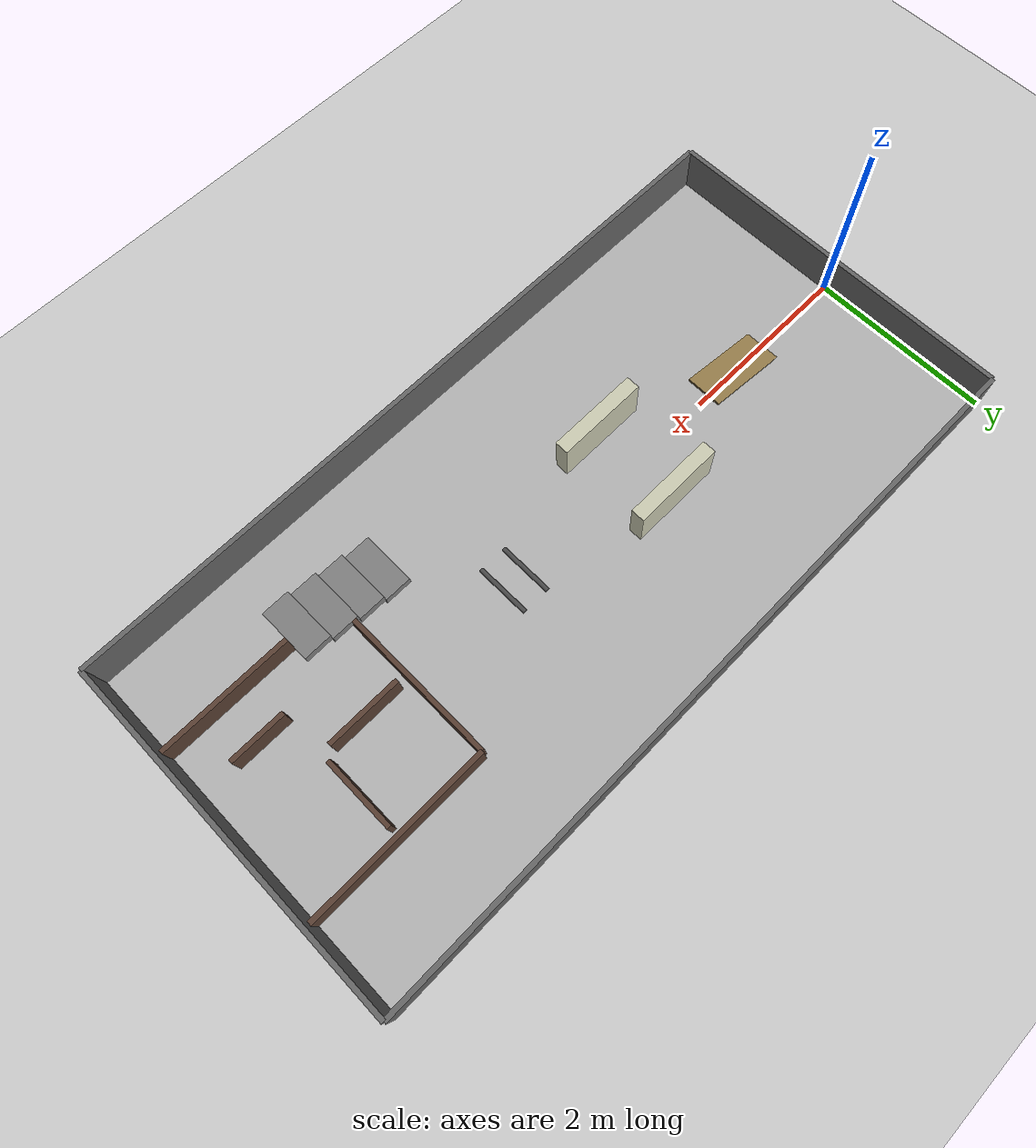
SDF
<?xml version="1.0" ?>
<sdf version="1.6">
  <world name="rmrc_arena">

    <!-- Physics -->
    <physics type="ode">
      <max_step_size>0.001</max_step_size>
      <real_time_factor>1.0</real_time_factor>
      <real_time_update_rate>1000</real_time_update_rate>
    </physics>

    <!-- Lighting -->
    <include>
      <uri>model://sun</uri>
    </include>

    <!-- Ground plane -->
    <include>
      <uri>model://ground_plane</uri>
    </include>

    <!-- ==================== Arena Floor (8m x 4m) ==================== -->
    <model name="arena_floor">
      <static>true</static>
      <link name="floor_link">
        <collision name="floor_collision">
          <geometry>
            <box><size>8.0 4.0 0.01</size></box>
          </geometry>
        </collision>
        <visual name="floor_visual">
          <geometry>
            <box><size>8.0 4.0 0.01</size></box>
          </geometry>
          <material>
            <ambient>0.6 0.6 0.6 1</ambient>
            <diffuse>0.7 0.7 0.7 1</diffuse>
          </material>
        </visual>
      </link>
      <pose>4.0 0 0.005 0 0 0</pose>
    </model>

    <!-- ==================== Boundary Walls ==================== -->
    <!-- Left wall -->
    <model name="wall_left">
      <static>true</static>
      <link name="link">
        <collision name="col"><geometry><box><size>8.0 0.05 0.5</size></box></geometry></collision>
        <visual name="vis"><geometry><box><size>8.0 0.05 0.5</size></box></geometry>
          <material><ambient>0.4 0.4 0.4 1</ambient></material>
        </visual>
      </link>
      <pose>4.0 2.0 0.25 0 0 0</pose>
    </model>
    <!-- Right wall -->
    <model name="wall_right">
      <static>true</static>
      <link name="link">
        <collision name="col"><geometry><box><size>8.0 0.05 0.5</size></box></geometry></collision>
        <visual name="vis"><geometry><box><size>8.0 0.05 0.5</size></box></geometry>
          <material><ambient>0.4 0.4 0.4 1</ambient></material>
        </visual>
      </link>
      <pose>4.0 -2.0 0.25 0 0 0</pose>
    </model>
    <!-- Start wall -->
    <model name="wall_start">
      <static>true</static>
      <link name="link">
        <collision name="col"><geometry><box><size>0.05 4.0 0.5</size></box></geometry></collision>
        <visual name="vis"><geometry><box><size>0.05 4.0 0.5</size></box></geometry>
          <material><ambient>0.4 0.4 0.4 1</ambient></material>
        </visual>
      </link>
      <pose>0 0 0.25 0 0 0</pose>
    </model>
    <!-- End wall -->
    <model name="wall_end">
      <static>true</static>
      <link name="link">
        <collision name="col"><geometry><box><size>0.05 4.0 0.5</size></box></geometry></collision>
        <visual name="vis"><geometry><box><size>0.05 4.0 0.5</size></box></geometry>
          <material><ambient>0.4 0.4 0.4 1</ambient></material>
        </visual>
      </link>
      <pose>8.0 0 0.25 0 0 0</pose>
    </model>

    <!-- ==================== Incline Ramp (15°, 1m long) ==================== -->
    <model name="incline_ramp">
      <static>true</static>
      <link name="link">
        <collision name="col">
          <geometry><box><size>1.0 0.4 0.02</size></box></geometry>
        </collision>
        <visual name="vis">
          <geometry><box><size>1.0 0.4 0.02</size></box></geometry>
          <material><ambient>0.6 0.5 0.3 1</ambient></material>
        </visual>
      </link>
      <!-- 15° incline: sin(15°)*0.5 ≈ 0.13 height at center -->
      <pose>1.5 0 0.13 0 -0.2618 0</pose>
    </model>

    <!-- ==================== K-Rails (concrete barriers) ==================== -->
    <model name="krail_1">
      <static>true</static>
      <link name="link">
        <collision name="col"><geometry><box><size>1.0 0.15 0.5</size></box></geometry></collision>
        <visual name="vis"><geometry><box><size>1.0 0.15 0.5</size></box></geometry>
          <material><ambient>0.8 0.8 0.7 1</ambient></material>
        </visual>
      </link>
      <pose>3.0 0.5 0.25 0 0 0</pose>
    </model>
    <model name="krail_2">
      <static>true</static>
      <link name="link">
        <collision name="col"><geometry><box><size>1.0 0.15 0.5</size></box></geometry></collision>
        <visual name="vis"><geometry><box><size>1.0 0.15 0.5</size></box></geometry>
          <material><ambient>0.8 0.8 0.7 1</ambient></material>
        </visual>
      </link>
      <pose>3.0 -0.5 0.25 0 0 0</pose>
    </model>

    <!-- ==================== Hurdles (pipes on floor) ==================== -->
    <model name="hurdle_1">
      <static>true</static>
      <link name="link">
        <collision name="col"><geometry><cylinder><radius>0.025</radius><length>0.6</length></cylinder></geometry></collision>
        <visual name="vis"><geometry><cylinder><radius>0.025</radius><length>0.6</length></cylinder></geometry>
          <material><ambient>0.3 0.3 0.3 1</ambient></material>
        </visual>
      </link>
      <pose>4.5 0 0.025 1.5708 0 0</pose>
    </model>
    <model name="hurdle_2">
      <static>true</static>
      <link name="link">
        <collision name="col"><geometry><cylinder><radius>0.025</radius><length>0.6</length></cylinder></geometry></collision>
        <visual name="vis"><geometry><cylinder><radius>0.025</radius><length>0.6</length></cylinder></geometry>
          <material><ambient>0.3 0.3 0.3 1</ambient></material>
        </visual>
      </link>
      <pose>4.8 0 0.025 1.5708 0 0</pose>
    </model>

    <!-- ==================== Stairs (4 steps) ==================== -->
    <model name="stair_1">
      <static>true</static>
      <link name="link">
        <collision name="col"><geometry><box><size>0.3 0.6 0.10</size></box></geometry></collision>
        <visual name="vis"><geometry><box><size>0.3 0.6 0.10</size></box></geometry>
          <material><ambient>0.5 0.5 0.5 1</ambient></material>
        </visual>
      </link>
      <pose>5.5 -1.0 0.05 0 0 0</pose>
    </model>
    <model name="stair_2">
      <static>true</static>
      <link name="link">
        <collision name="col"><geometry><box><size>0.3 0.6 0.10</size></box></geometry></collision>
        <visual name="vis"><geometry><box><size>0.3 0.6 0.10</size></box></geometry>
          <material><ambient>0.5 0.5 0.5 1</ambient></material>
        </visual>
      </link>
      <pose>5.8 -1.0 0.15 0 0 0</pose>
    </model>
    <model name="stair_3">
      <static>true</static>
      <link name="link">
        <collision name="col"><geometry><box><size>0.3 0.6 0.10</size></box></geometry></collision>
        <visual name="vis"><geometry><box><size>0.3 0.6 0.10</size></box></geometry>
          <material><ambient>0.5 0.5 0.5 1</ambient></material>
        </visual>
      </link>
      <pose>6.1 -1.0 0.25 0 0 0</pose>
    </model>
    <model name="stair_4">
      <static>true</static>
      <link name="link">
        <collision name="col"><geometry><box><size>0.3 0.6 0.10</size></box></geometry></collision>
        <visual name="vis"><geometry><box><size>0.3 0.6 0.10</size></box></geometry>
          <material><ambient>0.5 0.5 0.5 1</ambient></material>
        </visual>
      </link>
      <pose>6.4 -1.0 0.35 0 0 0</pose>
    </model>

    <!-- ==================== Labyrinth (2x2m, 8 wall segments) ==================== -->
    <model name="lab_wall_1">
      <static>true</static>
      <link name="link">
        <collision name="col"><geometry><box><size>2.0 0.05 0.3</size></box></geometry></collision>
        <visual name="vis"><geometry><box><size>2.0 0.05 0.3</size></box></geometry>
          <material><ambient>0.35 0.25 0.2 1</ambient></material>
        </visual>
      </link>
      <pose>7.0 1.0 0.15 0 0 0</pose>
    </model>
    <model name="lab_wall_2">
      <static>true</static>
      <link name="link">
        <collision name="col"><geometry><box><size>2.0 0.05 0.3</size></box></geometry></collision>
        <visual name="vis"><geometry><box><size>2.0 0.05 0.3</size></box></geometry>
          <material><ambient>0.35 0.25 0.2 1</ambient></material>
        </visual>
      </link>
      <pose>7.0 -1.0 0.15 0 0 0</pose>
    </model>
    <model name="lab_wall_3">
      <static>true</static>
      <link name="link">
        <collision name="col"><geometry><box><size>0.05 2.0 0.3</size></box></geometry></collision>
        <visual name="vis"><geometry><box><size>0.05 2.0 0.3</size></box></geometry>
          <material><ambient>0.35 0.25 0.2 1</ambient></material>
        </visual>
      </link>
      <pose>6.0 0 0.15 0 0 0</pose>
    </model>
    <!-- Internal labyrinth walls -->
    <model name="lab_internal_1">
      <static>true</static>
      <link name="link">
        <collision name="col"><geometry><box><size>0.8 0.05 0.3</size></box></geometry></collision>
        <visual name="vis"><geometry><box><size>0.8 0.05 0.3</size></box></geometry>
          <material><ambient>0.35 0.25 0.2 1</ambient></material>
        </visual>
      </link>
      <pose>6.5 0 0.15 0 0 0</pose>
    </model>
    <model name="lab_internal_2">
      <static>true</static>
      <link name="link">
        <collision name="col"><geometry><box><size>0.05 0.8 0.3</size></box></geometry></collision>
        <visual name="vis"><geometry><box><size>0.05 0.8 0.3</size></box></geometry>
          <material><ambient>0.35 0.25 0.2 1</ambient></material>
        </visual>
      </link>
      <pose>7.0 0.5 0.15 0 0 0</pose>
    </model>
    <model name="lab_internal_3">
      <static>true</static>
      <link name="link">
        <collision name="col"><geometry><box><size>0.6 0.05 0.3</size></box></geometry></collision>
        <visual name="vis"><geometry><box><size>0.6 0.05 0.3</size></box></geometry>
          <material><ambient>0.35 0.25 0.2 1</ambient></material>
        </visual>
      </link>
      <pose>7.3 -0.5 0.15 0 0 0</pose>
    </model>

  </world>
</sdf>
